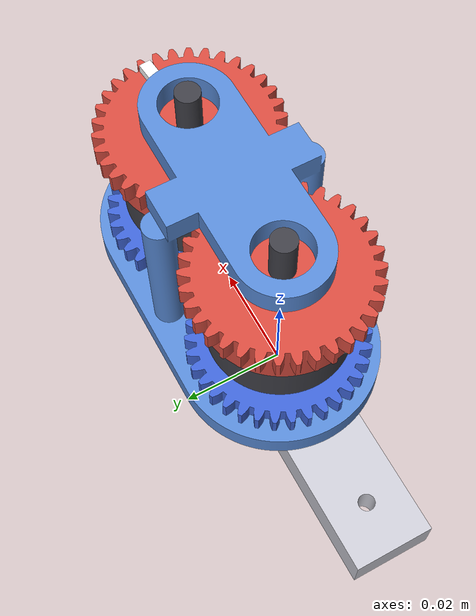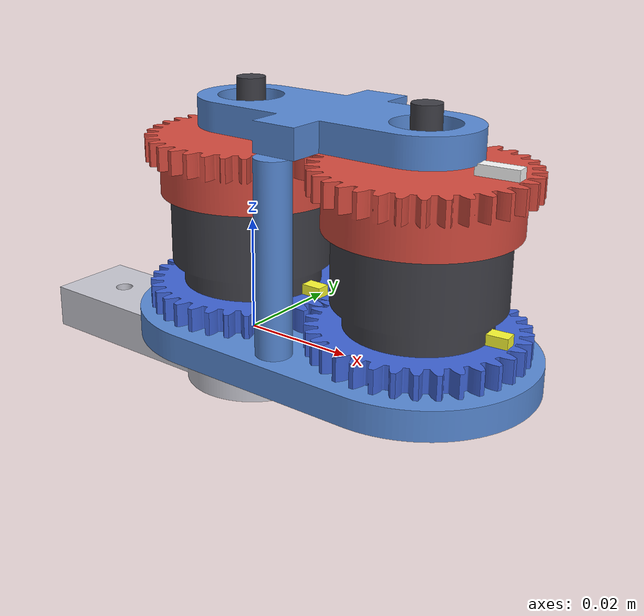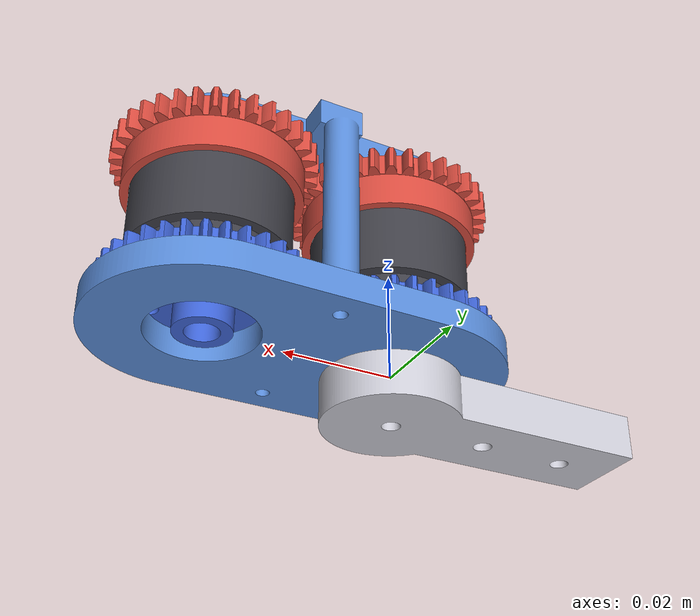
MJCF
<mujoco model="chain_motor_2cell">
  <compiler meshdir="out" angle="radian" autolimits="true"/>
  <option timestep="0.0001" gravity="0 0 0" integrator="implicitfast"/>
  <visual><global offwidth="960" offheight="720"/>
    <headlight ambient="0.45 0.45 0.45" diffuse="0.55 0.55 0.55" specular="0.1 0.1 0.1"/></visual>
  <default><geom contype="0" conaffinity="0" density="1240"/>
    <equality solref="0.0005 1"/></default>
  <asset>
    <mesh name="base" file="base.stl" scale="0.001 0.001 0.001"/>
    <mesh name="link_lower" file="link_lower.stl" scale="0.001 0.001 0.001"/>
    <mesh name="link_upper" file="link_upper.stl" scale="0.001 0.001 0.001"/>
    <mesh name="stator_gear_A" file="stator_gear_A.stl" scale="0.001 0.001 0.001"/>
    <mesh name="stator_gear_B" file="stator_gear_B.stl" scale="0.001 0.001 0.001"/>
    <mesh name="rotor_gear" file="rotor_gear.stl" scale="0.001 0.001 0.001"/>
    <mesh name="motor" file="motor_2204.stl" scale="0.001 0.001 0.001"/>
    <mesh name="dowel" file="dowel.stl" scale="0.001 0.001 0.001"/>
    <texture type="skybox" builtin="gradient" rgb1="0.93 0.94 0.96" rgb2="0.72 0.75 0.80" width="64" height="64"/>
    <material name="pla" rgba="0.80 0.80 0.84 1"/>
    <material name="link" rgba="0.35 0.55 0.85 0.9"/>
    <material name="stator" rgba="0.25 0.40 0.85 1"/>
    <material name="rotor" rgba="0.85 0.30 0.25 1"/>
    <material name="motor" rgba="0.25 0.25 0.28 1"/>
  </asset>
  <worldbody>
    <light pos="0.05 -0.1 0.3" dir="-0.1 0.3 -1"/>
    <body name="aim" pos="0.0 0 0.018"/>
    <camera name="iso" pos="0.03 -0.10 0.12" mode="targetbody" target="aim"/>
    <geom type="mesh" mesh="base" material="pla"/>
    <geom type="mesh" mesh="stator_gear_A" material="stator"/>
    <geom type="mesh" mesh="motor" material="motor"/>
    <geom type="box" size="0.0035 0.0012 0.0012" pos="0.012 0 0.0101" rgba="1 1 0.2 1" contype="0" conaffinity="0" mass="0"/>
    <body name="rotorA">
      <joint name="thA" type="hinge" axis="0 0 1"/>
      <inertial pos="0 0 0.0315" mass="0.016" diaginertia="1.25e-06 1.25e-06 2.5e-06"/>
      <geom type="mesh" mesh="rotor_gear" material="rotor" mass="0"/>
      <geom type="mesh" mesh="dowel" material="motor" mass="0"/>
      <geom type="box" size="0.0035 0.0012 0.0012" pos="0.012 0 0.0361" rgba="1 1 1 1" contype="0" conaffinity="0" mass="0"/>
    </body>
    <body name="link">
      <joint name="phi" type="hinge" axis="0 0 1" damping="0.0"/>
      <geom type="mesh" mesh="link_lower" material="link"/>
      <geom type="mesh" mesh="link_upper" material="link"/>
      <body name="statorB" pos="0.03414 0 0" quat="0.998933 0 0 0.046183">
        <joint name="sB" type="hinge" axis="0 0 1"/>
        <geom type="mesh" mesh="stator_gear_B" material="stator"/>
        <geom type="mesh" mesh="motor" material="motor"/>
        <geom type="box" size="0.0035 0.0012 0.0012" pos="0.012 0 0.0101" rgba="1 1 0.2 1" contype="0" conaffinity="0" mass="0"/>
        <body name="rotorB">
          <joint name="rB" type="hinge" axis="0 0 1"/>
          <inertial pos="0 0 0.0315" mass="0.016" diaginertia="1.25e-06 1.25e-06 2.5e-06"/>
          <geom type="mesh" mesh="rotor_gear" material="rotor" mass="0"/>
          <geom type="mesh" mesh="dowel" material="motor" mass="0"/>
      <geom type="mesh" mesh="dowel" material="motor" mass="0"/>
          <geom type="box" size="0.0035 0.0012 0.0012" pos="0.012 0 0.0361" rgba="1 1 1 1" contype="0" conaffinity="0" mass="0"/>
        </body>
      </body>
    </body>
  </worldbody>
  <tendon><fixed name="rotor_mesh"><joint joint="rB" coef="1"/><joint joint="thA" coef="1.0"/></fixed></tendon>
  <equality>
    <joint name="stator_mesh" joint1="sB" joint2="phi" polycoef="0 1.0 0 0 0"/>
    <tendon name="rotor_mesh" tendon1="rotor_mesh"/>
  </equality>
  <actuator><motor name="mA" joint="thA" gear="1"/><motor name="mB" joint="rB" gear="1"/></actuator>
</mujoco>
